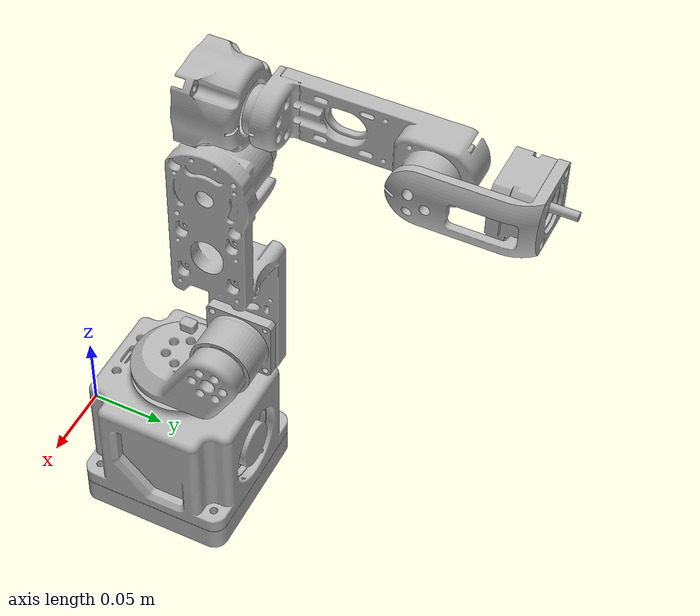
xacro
<?xml version="1.0"?>
<robot xmlns:xacro="http://www.ros.org/wiki/xacro" name="dummy-ros2">
    <xacro:arg name="initial_positions_file" default="initial_positions.yaml" />

    <!-- Import dummy-ros2 urdf file -->
    <xacro:include filename="$(find dummy-ros2_description)/urdf/dummy-ros2.xacro" />

    <!-- Import control_xacro -->
    <xacro:include filename="dummy-ros2.ros2_control.xacro" />

    <xacro:dummy-ros2_ros2_control name="FakeSystem" initial_positions_file="$(arg initial_positions_file)"/>

</robot>

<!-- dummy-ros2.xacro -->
<robot name="dummy-ros2" xmlns:xacro="http://www.ros.org/wiki/xacro">

<xacro:include filename="$(find dummy-ros2_description)/urdf/materials.xacro" />
<xacro:include filename="$(find dummy-ros2_description)/urdf/dummy-ros2.trans" />
<xacro:include filename="$(find dummy-ros2_description)/urdf/dummy-ros2.gazebo" />
<link name="world" />
<joint name="world_joint" type="fixed">
  <parent link="world" />
  <child link = "base_link" />
  <origin xyz="0.0 0.0 0.0" rpy="3.1415926536 3.1415926536 0.0" />
</joint>

<link name="base_link">
  <inertial>
    <origin xyz="-0.014999999232056279 -0.08246735477620445 0.032605452564980174" rpy="0 0 0"/>
    <mass value="2.718238265964926"/>
    <inertia ixx="0.005512" iyy="0.005791" izz="0.005729" ixy="0.0" iyz="7.1e-05" ixz="-0.0"/>
  </inertial>
  <visual>
    <origin xyz="0 0 0" rpy="0 0 0"/>
    <geometry>
      <mesh filename="file://$(find dummy-ros2_description)/meshes/base_link.stl" scale="0.001 0.001 0.001"/>
    </geometry>
    <material name="silver"/>
  </visual>
  <collision>
    <origin xyz="0 0 0" rpy="0 0 0"/>
    <geometry>
      <mesh filename="file://$(find dummy-ros2_description)/meshes/base_link.stl" scale="0.001 0.001 0.001"/>
    </geometry>
  </collision>
</link>

<link name="link1_1_1">
  <inertial>
    <origin xyz="-0.009839298045306172 -0.009665764146279704 0.016866258077055246" rpy="0 0 0"/>
    <mass value="0.41661715346354466"/>
    <inertia ixx="0.00024" iyy="0.000197" izz="0.000294" ixy="-7.9e-05" iyz="7e-05" ixz="4.5e-05"/>
  </inertial>
  <visual>
    <origin xyz="0.015 0.079017 -0.0825" rpy="0 0 0"/>
    <geometry>
      <mesh filename="file://$(find dummy-ros2_description)/meshes/link1_1_1.stl" scale="0.001 0.001 0.001"/>
    </geometry>
    <material name="silver"/>
  </visual>
  <collision>
    <origin xyz="0.015 0.079017 -0.0825" rpy="0 0 0"/>
    <geometry>
      <mesh filename="file://$(find dummy-ros2_description)/meshes/link1_1_1.stl" scale="0.001 0.001 0.001"/>
    </geometry>
  </collision>
</link>

<link name="link2_1_1">
  <inertial>
    <origin xyz="0.01589274835546871 -0.0002176337870416073 0.07388173251947006" rpy="0 0 0"/>
    <mass value="0.8248343726921459"/>
    <inertia ixx="0.003112" iyy="0.003172" izz="0.000413" ixy="-3e-06" iyz="1.8e-05" ixz="0.000549"/>
  </inertial>
  <visual>
    <origin xyz="0.032 0.114017 -0.12" rpy="0 0 0"/>
    <geometry>
      <mesh filename="file://$(find dummy-ros2_description)/meshes/link2_1_1.stl" scale="0.001 0.001 0.001"/>
    </geometry>
    <material name="silver"/>
  </visual>
  <collision>
    <origin xyz="0.032 0.114017 -0.12" rpy="0 0 0"/>
    <geometry>
      <mesh filename="file://$(find dummy-ros2_description)/meshes/link2_1_1.stl" scale="0.001 0.001 0.001"/>
    </geometry>
  </collision>
</link>

<link name="link3_1_1">
  <inertial>
    <origin xyz="-0.00556719985211092 -0.0008849434541333689 0.032857930319999507" rpy="0 0 0"/>
    <mass value="0.334446749870256"/>
    <inertia ixx="0.000242" iyy="0.000299" izz="0.000122" ixy="-3e-06" iyz="5e-06" ixz="7.5e-05"/>
  </inertial>
  <visual>
    <origin xyz="-0.0 0.114017 -0.266" rpy="0 0 0"/>
    <geometry>
      <mesh filename="file://$(find dummy-ros2_description)/meshes/link3_1_1.stl" scale="0.001 0.001 0.001"/>
    </geometry>
    <material name="silver"/>
  </visual>
  <collision>
    <origin xyz="-0.0 0.114017 -0.266" rpy="0 0 0"/>
    <geometry>
      <mesh filename="file://$(find dummy-ros2_description)/meshes/link3_1_1.stl" scale="0.001 0.001 0.001"/>
    </geometry>
  </collision>
</link>

<link name="link4_1_1">
  <inertial>
    <origin xyz="0.004619417619842917 -0.05852434935618758 -1.7565479792924776e-07" rpy="0 0 0"/>
    <mass value="0.38229981321745393"/>
    <inertia ixx="0.000681" iyy="7.7e-05" izz="0.000663" ixy="-3e-06" iyz="0.0" ixz="-0.0"/>
  </inertial>
  <visual>
    <origin xyz="0.017 0.131517 -0.318" rpy="0 0 0"/>
    <geometry>
      <mesh filename="file://$(find dummy-ros2_description)/meshes/link4_1_1.stl" scale="0.001 0.001 0.001"/>
    </geometry>
    <material name="silver"/>
  </visual>
  <collision>
    <origin xyz="0.017 0.131517 -0.318" rpy="0 0 0"/>
    <geometry>
      <mesh filename="file://$(find dummy-ros2_description)/meshes/link4_1_1.stl" scale="0.001 0.001 0.001"/>
    </geometry>
  </collision>
</link>

<link name="link5_1_1">
  <inertial>
    <origin xyz="0.0009057999155941757 -0.02906083845119581 -2.2799463705869272e-08" rpy="0 0 0"/>
    <mass value="0.14119342984175104"/>
    <inertia ixx="0.000118" iyy="3.6e-05" izz="0.000122" ixy="2.5e-05" iyz="0.0" ixz="0.0"/>
  </inertial>
  <visual>
    <origin xyz="0.0346 0.234017 -0.318" rpy="0 0 0"/>
    <geometry>
      <mesh filename="file://$(find dummy-ros2_description)/meshes/link5_1_1.stl" scale="0.001 0.001 0.001"/>
    </geometry>
    <material name="silver"/>
  </visual>
  <collision>
    <origin xyz="0.0346 0.234017 -0.318" rpy="0 0 0"/>
    <geometry>
      <mesh filename="file://$(find dummy-ros2_description)/meshes/link5_1_1.stl" scale="0.001 0.001 0.001"/>
    </geometry>
  </collision>
</link>

<link name="link6_1_1">
  <inertial>
    <origin xyz="-0.0003068043075796188 0.01033562863039611 -3.814698834592178e-09" rpy="0 0 0"/>
    <mass value="0.21609201162441805"/>
    <inertia ixx="3.1e-05" iyy="4.2e-05" izz="3.2e-05" ixy="1e-06" iyz="-0.0" ixz="-0.0"/>
  </inertial>
  <visual>
    <origin xyz="0.016 0.290517 -0.318" rpy="0 0 0"/>
    <geometry>
      <mesh filename="file://$(find dummy-ros2_description)/meshes/link6_1_1.stl" scale="0.001 0.001 0.001"/>
    </geometry>
    <material name="silver"/>
  </visual>
  <collision>
    <origin xyz="0.016 0.290517 -0.318" rpy="0 0 0"/>
    <geometry>
      <mesh filename="file://$(find dummy-ros2_description)/meshes/link6_1_1.stl" scale="0.001 0.001 0.001"/>
    </geometry>
  </collision>
</link>

<joint name="Joint1" type="revolute">
  <origin xyz="-0.015 -0.079017 0.0825" rpy="0 0 0"/>
  <parent link="base_link"/>
  <child link="link1_1_1"/>
  <axis xyz="0.0 0.0 1.0"/>
  <limit
    lower="-3.141593"
    upper="3.141593"
    effort="150"
    velocity="3.15"/>
</joint>

<joint name="Joint2" type="revolute">
  <origin xyz="-0.017 -0.035 0.0375" rpy="0 0 0"/>
  <parent link="link1_1_1"/>
  <child link="link2_1_1"/>
  <axis xyz="1.0 0.0 -0.0"/>
  <limit
    lower="-1.308997"
    upper="1.570796"
    effort="150"
    velocity="3.15" />
</joint>

<joint name="Joint3" type="revolute">
  <origin xyz="0.032 0.0 0.146" rpy="0 0 0"/>
  <parent link="link2_1_1"/>
  <child link="link3_1_1"/>
  <axis xyz="1.0 -0.0 -0.0"/>
  <limit
    lower="-1.570796"
    upper="1.570796"
    effort="150"
    velocity="3.15" />
</joint>

<joint name="Joint4" type="revolute">
  <origin xyz="-0.017 -0.0175 0.052" rpy="0 0 0"/>
  <parent link="link3_1_1"/>
  <child link="link4_1_1"/>
  <axis xyz="0.0 -1.0 0.0"/>
  <limit
    lower="-3.14"
    upper="3.14"
    effort="150"
    velocity="3.15" />
</joint>

<joint name="Joint5" type="revolute">
  <origin xyz="-0.0176 -0.1025 0.0" rpy="0 0 0"/>
  <parent link="link4_1_1"/>
  <child link="link5_1_1"/>
  <axis xyz="-1.0 -0.0 0.0"/>
  <limit
    lower="-1.570796"
    upper="1.570796"
    effort="150"
    velocity="3.15" />
</joint>

<joint name="Joint6" type="revolute">
  <origin xyz="0.0186 -0.0565 0.0" rpy="0 0 0"/>
  <parent link="link5_1_1"/>
  <child link="link6_1_1"/>
  <axis xyz="0.0 1.0 -0.0"/>
  <limit
    lower="-3.14"
    upper="3.14"
    effort="150"
    velocity="3.15" />
</joint>

</robot>

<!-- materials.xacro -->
<robot name="dummy-ros2" xmlns:xacro="http://www.ros.org/wiki/xacro" >

<material name="silver">
  <color rgba="0.700 0.700 0.700 1.000"/>
</material>

</robot>

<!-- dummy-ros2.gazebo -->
<robot name="dummy-ros2" xmlns:xacro="http://www.ros.org/wiki/xacro" >

<xacro:property name="body_color" value="Gazebo/Silver" />

<gazebo>
  <plugin name="control" filename="libgazebo_ros_control.so"/>
</gazebo>
<gazebo reference="base_link">
  <material>${body_color}</material>
  <mu1>0.2</mu1>
  <mu2>0.2</mu2>
  <self_collide>true</self_collide>
  <gravity>true</gravity>
</gazebo>

<gazebo reference="link1_1_1">
  <material>${body_color}</material>
  <mu1>0.2</mu1>
  <mu2>0.2</mu2>
  <self_collide>true</self_collide>
</gazebo>

<gazebo reference="link2_1_1">
  <material>${body_color}</material>
  <mu1>0.2</mu1>
  <mu2>0.2</mu2>
  <self_collide>true</self_collide>
</gazebo>

<gazebo reference="link3_1_1">
  <material>${body_color}</material>
  <mu1>0.2</mu1>
  <mu2>0.2</mu2>
  <self_collide>true</self_collide>
</gazebo>

<gazebo reference="link4_1_1">
  <material>${body_color}</material>
  <mu1>0.2</mu1>
  <mu2>0.2</mu2>
  <self_collide>true</self_collide>
</gazebo>

<gazebo reference="link5_1_1">
  <material>${body_color}</material>
  <mu1>0.2</mu1>
  <mu2>0.2</mu2>
  <self_collide>true</self_collide>
</gazebo>

<gazebo reference="link6_1_1">
  <material>${body_color}</material>
  <mu1>0.2</mu1>
  <mu2>0.2</mu2>
  <self_collide>true</self_collide>
</gazebo>

</robot>
